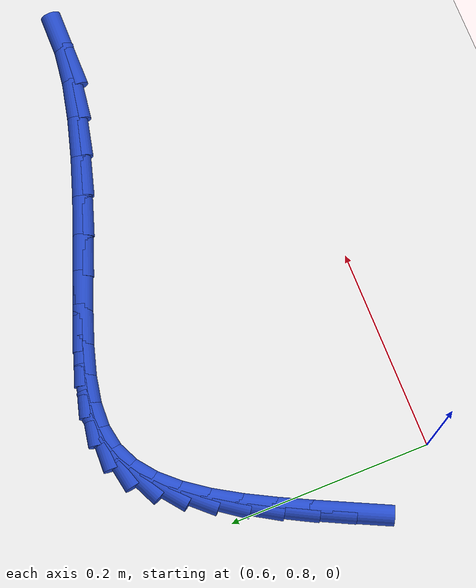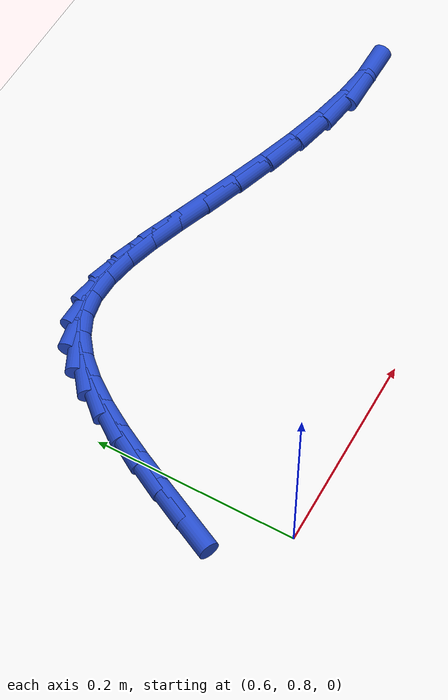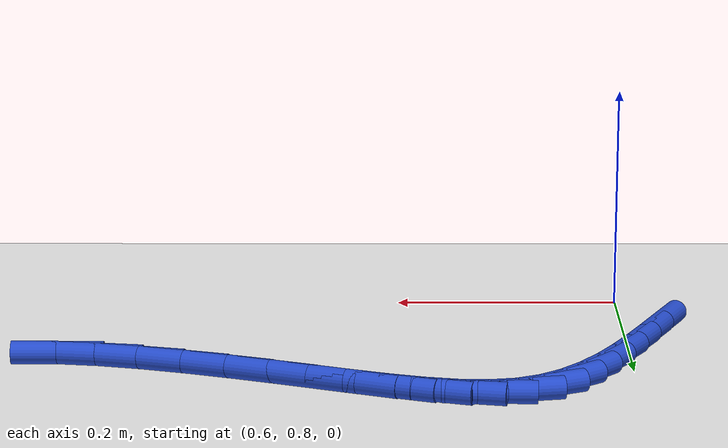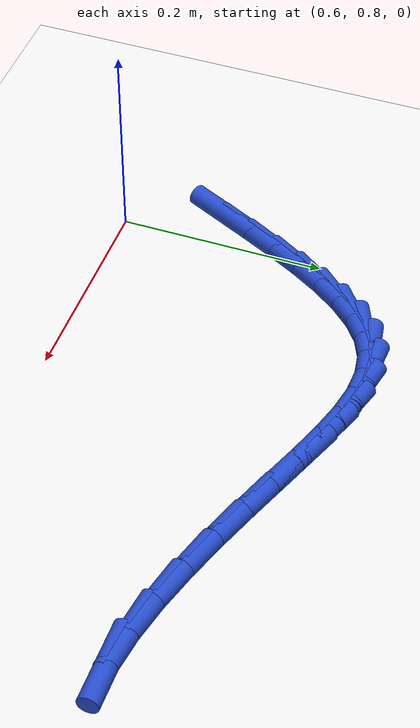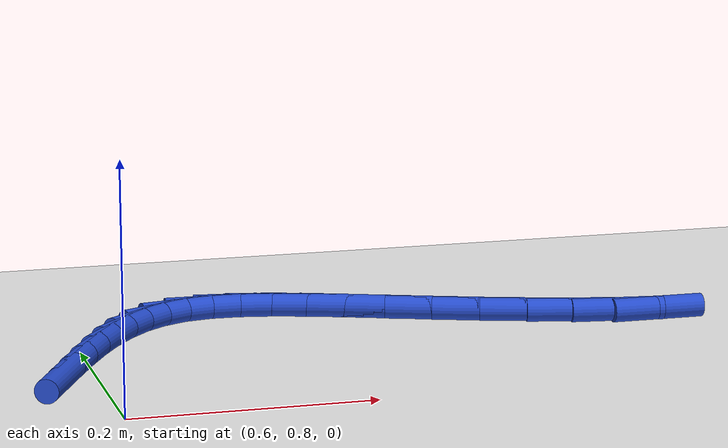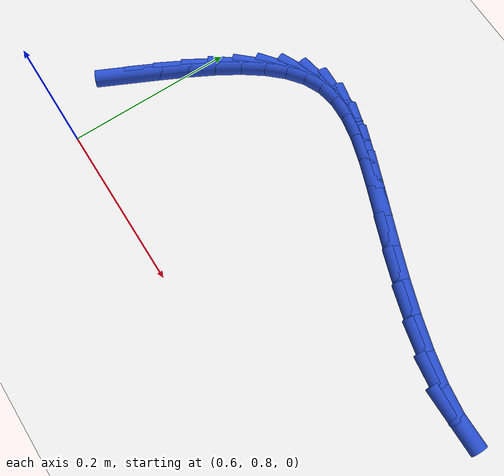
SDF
<sdf version="1.6">
 <world name="default">
  <model name="ground_plane">
   <static>1</static>
   <link name="link">
    <collision name="collision">
     <geometry><plane><normal>0 0 1</normal><size>100 100</size></plane></geometry>
     <surface><friction><ode><mu>100</mu><mu2>50</mu2></ode></friction></surface>
    </collision>
    <visual name="visual">
     <cast_shadows>0</cast_shadows>
     <geometry><plane><normal>0 0 1</normal><size>100 100</size></plane></geometry>
     <material>
      <script><uri>file://media/materials/scripts/gazebo.material</uri><name>Gazebo/WhiteGlow</name></script>
     </material>
    </visual>
   </link>
  </model>
  <model name="line">
   <link name="link_42">
    <pose>0.5666565502273726 0.892457426983073 0.01 0 1.57 1.1232685931399682</pose>
    <collision name="collision">
     <geometry><cylinder><radius>0.01</radius><length>0.08</length></cylinder></geometry>
    </collision>
    <visual name="visual">
     <material>
      <script><name>Gazebo/Blue</name><uri>file://media/materials/scripts/gazebo.material</uri></script>
     </material>
     <geometry><cylinder><radius>0.01</radius><length>0.08</length></cylinder></geometry>
    </visual>
   </link>
   <link name="link_43">
    <pose>0.5817948382059095 0.9239948997308772 0.01 0 1.57 1.1106411237291867</pose>
    <collision name="collision">
     <geometry><cylinder><radius>0.01</radius><length>0.08</length></cylinder></geometry>
    </collision>
    <visual name="visual">
     <material>
      <script><name>Gazebo/Blue</name><uri>file://media/materials/scripts/gazebo.material</uri></script>
     </material>
     <geometry><cylinder><radius>0.01</radius><length>0.08</length></cylinder></geometry>
    </visual>
   </link>
   <link name="link_44">
    <pose>0.5970073465286229 0.9546874272487932 0.01 0 1.57 1.0799575738453326</pose>
    <collision name="collision">
     <geometry><cylinder><radius>0.01</radius><length>0.08</length></cylinder></geometry>
    </collision>
    <visual name="visual">
     <material>
      <script><name>Gazebo/Blue</name><uri>file://media/materials/scripts/gazebo.material</uri></script>
     </material>
     <geometry><cylinder><radius>0.01</radius><length>0.08</length></cylinder></geometry>
    </visual>
   </link>
   <link name="link_45">
    <pose>0.612558615148148 0.9837842609798066 0.01 0 1.57 1.0275139071233523</pose>
    <collision name="collision">
     <geometry><cylinder><radius>0.01</radius><length>0.08</length></cylinder></geometry>
    </collision>
    <visual name="visual">
     <material>
      <script><name>Gazebo/Blue</name><uri>file://media/materials/scripts/gazebo.material</uri></script>
     </material>
     <geometry><cylinder><radius>0.01</radius><length>0.08</length></cylinder></geometry>
    </visual>
   </link>
   <link name="link_46">
    <pose>0.6287131840171197 1.0105346523669023 0.01 0 1.57 0.9469931408486344</pose>
    <collision name="collision">
     <geometry><cylinder><radius>0.01</radius><length>0.08</length></cylinder></geometry>
    </collision>
    <visual name="visual">
     <material>
      <script><name>Gazebo/Blue</name><uri>file://media/materials/scripts/gazebo.material</uri></script>
     </material>
     <geometry><cylinder><radius>0.01</radius><length>0.08</length></cylinder></geometry>
    </visual>
   </link>
   <link name="link_47">
    <pose>0.6457355930881725 1.0341878528530652 0.01 0 1.57 0.828849974729655</pose>
    <collision name="collision">
     <geometry><cylinder><radius>0.01</radius><length>0.08</length></cylinder></geometry>
    </collision>
    <visual name="visual">
     <material>
      <script><name>Gazebo/Blue</name><uri>file://media/materials/scripts/gazebo.material</uri></script>
     </material>
     <geometry><cylinder><radius>0.01</radius><length>0.08</length></cylinder></geometry>
    </visual>
   </link>
   <link name="link_48">
    <pose>0.663890382313941 1.05399311388128 0.01 0 1.57 0.6610332251564337</pose>
    <collision name="collision">
     <geometry><cylinder><radius>0.01</radius><length>0.08</length></cylinder></geometry>
    </collision>
    <visual name="visual">
     <material>
      <script><name>Gazebo/Blue</name><uri>file://media/materials/scripts/gazebo.material</uri></script>
     </material>
     <geometry><cylinder><radius>0.01</radius><length>0.08</length></cylinder></geometry>
    </visual>
   </link>
   <link name="link_49">
    <pose>0.6834420916470603 1.069199686894532 0.01 0 1.57 0.43502017714248226</pose>
    <collision name="collision">
     <geometry><cylinder><radius>0.01</radius><length>0.08</length></cylinder></geometry>
    </collision>
    <visual name="visual">
     <material>
      <script><name>Gazebo/Blue</name><uri>file://media/materials/scripts/gazebo.material</uri></script>
     </material>
     <geometry><cylinder><radius>0.01</radius><length>0.08</length></cylinder></geometry>
    </visual>
   </link>
   <link name="link_50">
    <pose>0.7046551588923999 1.0790576364832445 0.01 0 1.57 0.1778824332695893</pose>
    <collision name="collision">
     <geometry><cylinder><radius>0.01</radius><length>0.08</length></cylinder></geometry>
    </collision>
    <visual name="visual">
     <material>
      <script><name>Gazebo/Blue</name><uri>file://media/materials/scripts/gazebo.material</uri></script>
     </material>
     <geometry><cylinder><radius>0.01</radius><length>0.08</length></cylinder></geometry>
    </visual>
   </link>
   <link name="link_51">
    <pose>0.7277448127488982 1.0832087564010004 0.01 0 1.57 -0.03568982639180302</pose>
    <collision name="collision">
     <geometry><cylinder><radius>0.01</radius><length>0.08</length></cylinder></geometry>
    </collision>
    <visual name="visual">
     <material>
      <script><name>Gazebo/Blue</name><uri>file://media/materials/scripts/gazebo.material</uri></script>
     </material>
     <geometry><cylinder><radius>0.01</radius><length>0.08</length></cylinder></geometry>
    </visual>
   </link>
   <link name="link_52">
    <pose>0.7527982266461936 1.0823142245688333 0.01 0 1.57 -0.18667077159956472</pose>
    <collision name="collision">
     <geometry><cylinder><radius>0.01</radius><length>0.08</length></cylinder></geometry>
    </collision>
    <visual name="visual">
     <material>
      <script><name>Gazebo/Blue</name><uri>file://media/materials/scripts/gazebo.material</uri></script>
     </material>
     <geometry><cylinder><radius>0.01</radius><length>0.08</length></cylinder></geometry>
    </visual>
   </link>
   <link name="link_53">
    <pose>0.7798820099178788 1.0771989194258498 0.01 0 1.57 -0.28379867088600436</pose>
    <collision name="collision">
     <geometry><cylinder><radius>0.01</radius><length>0.08</length></cylinder></geometry>
    </collision>
    <visual name="visual">
     <material>
      <script><name>Gazebo/Blue</name><uri>file://media/materials/scripts/gazebo.material</uri></script>
     </material>
     <geometry><cylinder><radius>0.01</radius><length>0.08</length></cylinder></geometry>
    </visual>
   </link>
   <link name="link_54">
    <pose>0.8090627718975479 1.068687719411155 0.01 0 1.57 -0.33984584873237744</pose>
    <collision name="collision">
     <geometry><cylinder><radius>0.01</radius><length>0.08</length></cylinder></geometry>
    </collision>
    <visual name="visual">
     <material>
      <script><name>Gazebo/Blue</name><uri>file://media/materials/scripts/gazebo.material</uri></script>
     </material>
     <geometry><cylinder><radius>0.01</radius><length>0.08</length></cylinder></geometry>
    </visual>
   </link>
   <link name="link_55">
    <pose>0.8404071219187935 1.0576055029638551 0.01 0 1.57 -0.3649682735976568</pose>
    <collision name="collision">
     <geometry><cylinder><radius>0.01</radius><length>0.08</length></cylinder></geometry>
    </collision>
    <visual name="visual">
     <material>
      <script><name>Gazebo/Blue</name><uri>file://media/materials/scripts/gazebo.material</uri></script>
     </material>
     <geometry><cylinder><radius>0.01</radius><length>0.08</length></cylinder></geometry>
    </visual>
   </link>
   <link name="link_56">
    <pose>0.8739816693152087 1.044777148523056 0.01 0 1.57 -0.36606762458616404</pose>
    <collision name="collision">
     <geometry><cylinder><radius>0.01</radius><length>0.08</length></cylinder></geometry>
    </collision>
    <visual name="visual">
     <material>
      <script><name>Gazebo/Blue</name><uri>file://media/materials/scripts/gazebo.material</uri></script>
     </material>
     <geometry><cylinder><radius>0.01</radius><length>0.08</length></cylinder></geometry>
    </visual>
   </link>
   <link name="link_57">
    <pose>0.9098477865228428 1.0310280132841756 0.01 0 1.57 -0.35017786426880093</pose>
    <collision name="collision">
     <geometry><cylinder><radius>0.01</radius><length>0.08</length></cylinder></geometry>
    </collision>
    <visual name="visual">
     <material>
      <script><name>Gazebo/Blue</name><uri>file://media/materials/scripts/gazebo.material</uri></script>
     </material>
     <geometry><cylinder><radius>0.01</radius><length>0.08</length></cylinder></geometry>
    </visual>
   </link>
   <link name="link_58">
    <pose>0.9476498017102475 1.0172215805609783 0.01 0 1.57 -0.32280895303635965</pose>
    <collision name="collision">
     <geometry><cylinder><radius>0.01</radius><length>0.08</length></cylinder></geometry>
    </collision>
    <visual name="visual">
     <material>
      <script><name>Gazebo/Blue</name><uri>file://media/materials/scripts/gazebo.material</uri></script>
     </material>
     <geometry><cylinder><radius>0.01</radius><length>0.08</length></cylinder></geometry>
    </visual>
   </link>
   <link name="link_59">
    <pose>0.9863183289214588 1.0042865812951123 0.01 0 1.57 -0.2821059428821999</pose>
    <collision name="collision">
     <geometry><cylinder><radius>0.01</radius><length>0.08</length></cylinder></geometry>
    </collision>
    <visual name="visual">
     <material>
      <script><name>Gazebo/Blue</name><uri>file://media/materials/scripts/gazebo.material</uri></script>
     </material>
     <geometry><cylinder><radius>0.01</radius><length>0.08</length></cylinder></geometry>
    </visual>
   </link>
   <link name="link_60">
    <pose>1.024713987375562 0.9931581453436117 0.01 0 1.57 -0.2229989032277991</pose>
    <collision name="collision">
     <geometry><cylinder><radius>0.01</radius><length>0.08</length></cylinder></geometry>
    </collision>
    <visual name="visual">
     <material>
      <script><name>Gazebo/Blue</name><uri>file://media/materials/scripts/gazebo.material</uri></script>
     </material>
     <geometry><cylinder><radius>0.01</radius><length>0.08</length></cylinder></geometry>
    </visual>
   </link>
   <link name="link_61">
    <pose>1.0616973962916436 0.9847714025635098 0.01 0 1.57 -0.13594617774612047</pose>
    <collision name="collision">
     <geometry><cylinder><radius>0.01</radius><length>0.08</length></cylinder></geometry>
    </collision>
    <visual name="visual">
     <material>
      <script><name>Gazebo/Blue</name><uri>file://media/materials/scripts/gazebo.material</uri></script>
     </material>
     <geometry><cylinder><radius>0.01</radius><length>0.08</length></cylinder></geometry>
    </visual>
   </link>
   <link name="link_62">
    <pose>1.096129174888789 0.9800614828118406 0.01 0 1.57 -0.003186860398285416</pose>
    <collision name="collision">
     <geometry><cylinder><radius>0.01</radius><length>0.08</length></cylinder></geometry>
    </collision>
    <visual name="visual">
     <material>
      <script><name>Gazebo/Blue</name><uri>file://media/materials/scripts/gazebo.material</uri></script>
     </material>
     <geometry><cylinder><radius>0.01</radius><length>0.08</length></cylinder></geometry>
    </visual>
   </link>
  </model>
 </world>
</sdf>
